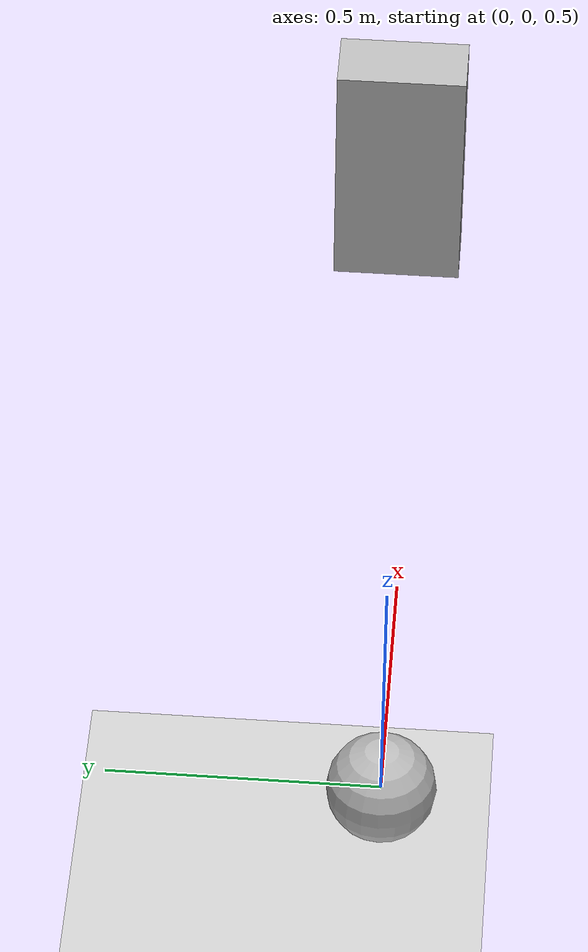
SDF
<?xml version="1.0" ?>
<sdf version="1.4">
  <world name="default">
    <physics type="ode">
      <gravity>0.000000 0.000000 -9.810000</gravity>
      <ode>
        <solver>
          <type>quick</type>
          <iters>1000</iters>
          <precon_iters>0</precon_iters>
          <sor>1.000000</sor>
        </solver>
        <constraints>
          <cfm>0.000000</cfm>
          <erp>0.200000</erp>
          <contact_max_correcting_vel>100.000000</contact_max_correcting_vel>
          <contact_surface_layer>0.01000</contact_surface_layer>
        </constraints>
      </ode>
      <bullet>
        <solver>
          <type>sequential_impulse</type>
          <iters>1000</iters>
          <sor>1.000000</sor>
        </solver>
        <constraints>
          <cfm>0.000000</cfm>
          <erp>0.200000</erp>
          <split_impulse>true</split_impulse>
          <split_impulse_penetration_threshold>-0.01</split_impulse_penetration_threshold>
          <contact_surface_layer>0.00000</contact_surface_layer>
        </constraints>
      </bullet>
      <real_time_update_rate>0.000000</real_time_update_rate>
      <max_step_size>0.001</max_step_size>
    </physics>
    <include>
      <uri>model://ground_plane</uri>
    </include>
    <include>
      <uri>model://sun</uri>
    </include>

    <model name="model_1">
      <link name="link_1">
        <inertial>
          <pose>0 0 0.5 0 0 0</pose>
          <inertia>
            <ixx>0.100000</ixx>
            <ixy>0.000000</ixy>
            <ixz>0.000000</ixz>
            <iyy>0.100000</iyy>
            <iyz>0.000000</iyz>
            <izz>0.100000</izz>
          </inertia>
          <mass>10.000000</mass>
        </inertial>
        <visual name="visual_sphere">
          <pose>0 0 0.5 0 0 0</pose>
          <geometry>
            <sphere>
              <radius>0.100000</radius>
            </sphere>
          </geometry>
        </visual>
        <collision name="collision_sphere">
          <pose>0 0 0.5 0 0 0</pose>
          <max_contacts>250</max_contacts>
          <geometry>
            <sphere>
              <radius>0.100000</radius>
            </sphere>
          </geometry>
        </collision>
      </link>

      <link name="link_2">
        <pose>0 0 1.5 0 0 0</pose>
        <inertial>
          <pose>0 0 0.5 0 0 0</pose>
          <inertia>
            <ixx>0.100000</ixx>
            <ixy>0.000000</ixy>
            <ixz>0.000000</ixz>
            <iyy>0.100000</iyy>
            <iyz>0.000000</iyz>
            <izz>0.100000</izz>
          </inertia>
          <mass>10.000000</mass>
        </inertial>
        <visual name="visual_box">
          <pose>0 0 0.5 0 0 0</pose>
          <geometry>
            <box>
              <size>0.1 0.2 0.4</size>
            </box>
          </geometry>
        </visual>
        <collision name="collision_box">
          <pose>0 0 0.5 0 0 0</pose>
          <geometry>
            <box>
              <size>0.1 0.2 0.4</size>
            </box>
          </geometry>
        </collision>
      </link>

      <joint name="joint_01" type="revolute">
        <parent>world</parent>
        <child>link_1</child>
        <!-- joint at origin of link_1 inertial frame -->
        <!-- moement arm from link_1 inertial frame to joint_01 is 0m -->
        <pose>0 0 0.5 0 0 0</pose>
        <axis>
          <limit>
            <lower>-1.57079</lower>
            <upper>1.57079</upper>
            <effort>1000.000000</effort>
            <velocity>1000.000000</velocity>
          </limit>
          <dynamics>
            <damping>0.000000</damping>
            <friction>0.000000</friction>
          </dynamics>
          <xyz>1.000000 0.000000 0.000000</xyz>
        </axis>
        <sensor name="force_torque" type="force_torque">
          <always_on>true</always_on>
          <visualize>true</visualize>
          <update_rate>30</update_rate>
        </sensor>
        <physics>
          <provide_feedback>true</provide_feedback>
        </physics>
      </joint>

      <joint name="joint_12" type="revolute">
        <parent>link_1</parent>
        <child>link_2</child>
        <!-- joint_1 at origin of link_2 link frame -->
        <!-- moement arm from link_2 inertial frame to joint_01 is 2m -->
        <!-- moement arm from link_2 inertial frame to joint_12 is 0.5m -->
        <pose>0 0 0 0 0 0</pose>
        <axis>
          <limit>
            <lower>-0.000001</lower>
            <upper>0.000001</upper>
            <effort>1000.000000</effort>
            <velocity>1000.000000</velocity>
          </limit>
          <dynamics>
            <damping>0.000000</damping>
            <friction>0.000000</friction>
          </dynamics>
          <xyz>0.000000 0.000000 1.000000</xyz>
        </axis>
        <sensor name="force_torque" type="force_torque">
          <always_on>true</always_on>
          <visualize>true</visualize>
          <update_rate>30</update_rate>
        </sensor>
        <physics>
          <provide_feedback>true</provide_feedback>
        </physics>
      </joint>
    </model>
  </world>
</sdf>
